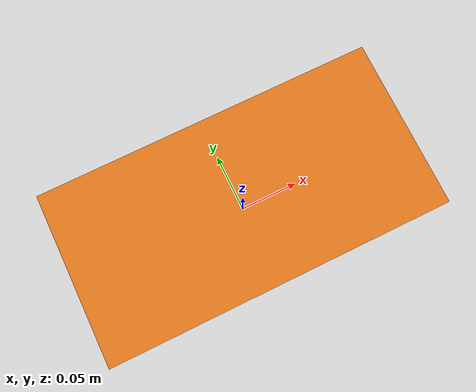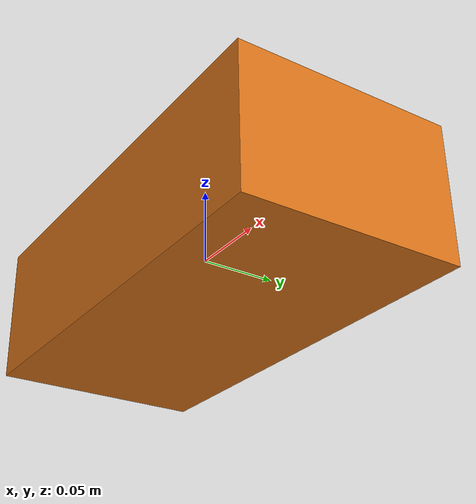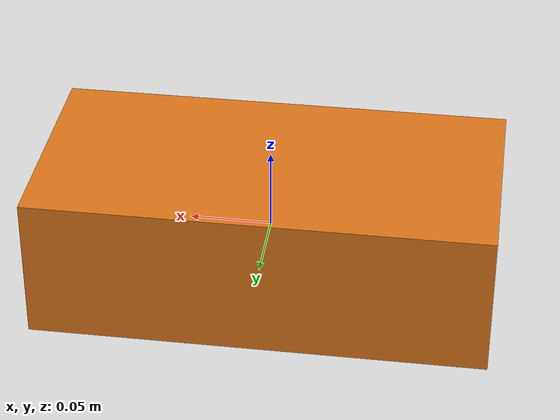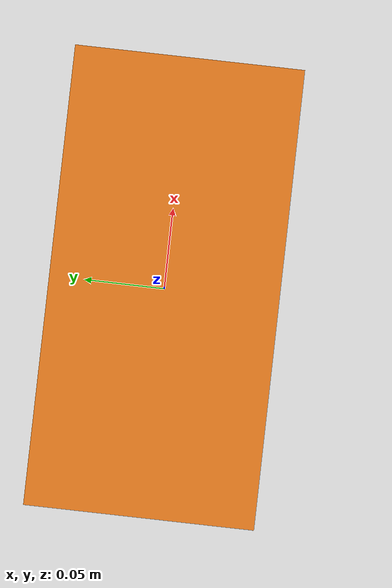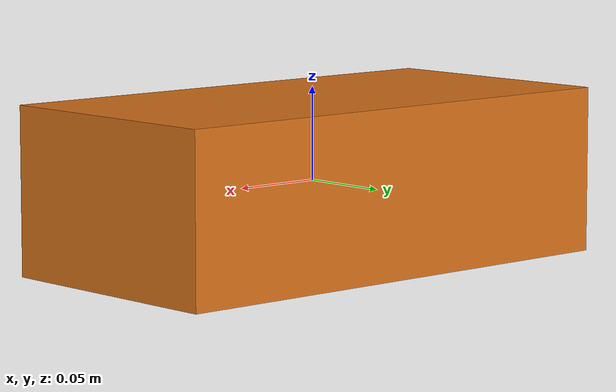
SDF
<?xml version="1.0"?>
<sdf version="1.8">
<model name="torta_ahogada">
  <link name="body">
    <inertial><mass>1.0</mass><inertia><ixx>0.0023</ixx><iyy>0.0072</iyy><izz>0.0082</izz></inertia></inertial>
    <collision name="c"><geometry><box><size>0.28 0.14 0.09</size></box></geometry></collision>
    <visual name="v"><geometry><box><size>0.28 0.14 0.09</size></box></geometry><material><ambient>0.85 0.45 0.1 1</ambient></material></visual>
    <sensor name="lidar" type="gpu_lidar">
      <pose>0 0 0.14 0 0 0</pose>
      <topic>/model/torta_ahogada/scan</topic>
      <update_rate>5</update_rate>
      <lidar><scan><horizontal><samples>360</samples><resolution>1</resolution><min_angle>-3.1416</min_angle><max_angle>3.1416</max_angle></horizontal></scan><range><min>0.12</min><max>12.0</max><resolution>0.01</resolution></range></lidar>
      <always_on>1</always_on><visualize>false</visualize>
    </sensor>
  </link>
  <plugin filename="gz-sim-velocity-control-system" name="gz::sim::systems::VelocityControl"/>
</model>
</sdf>
